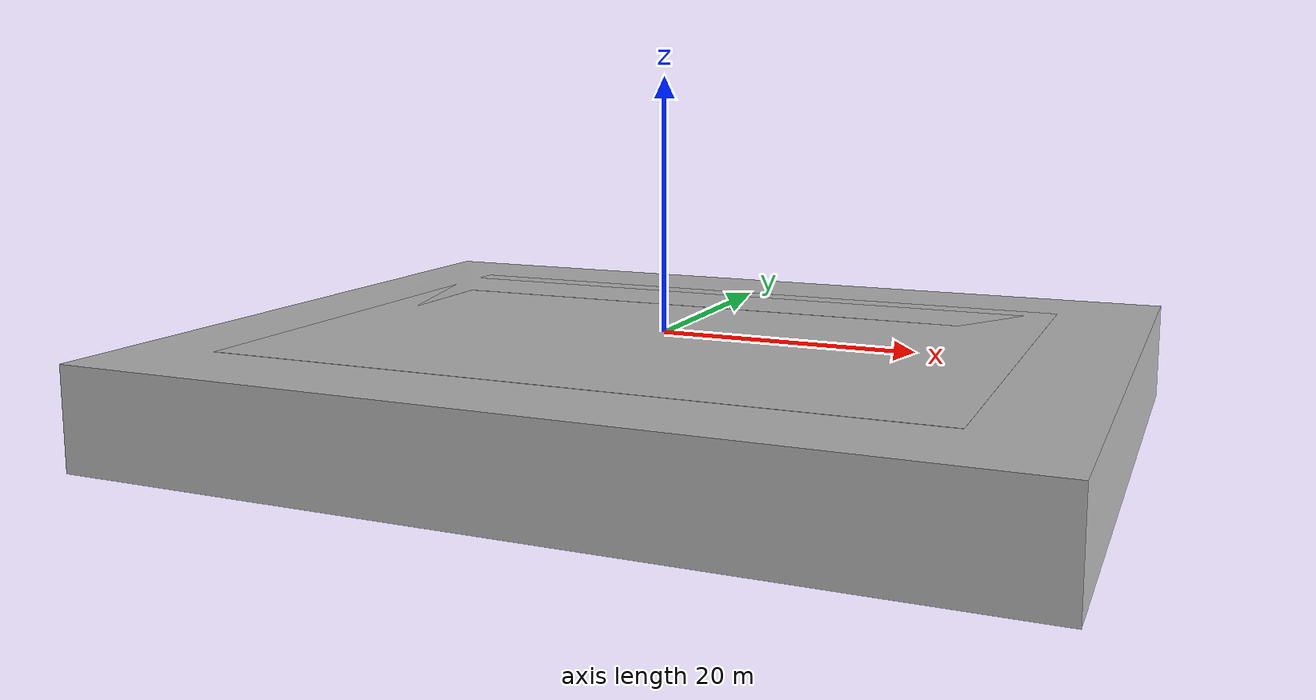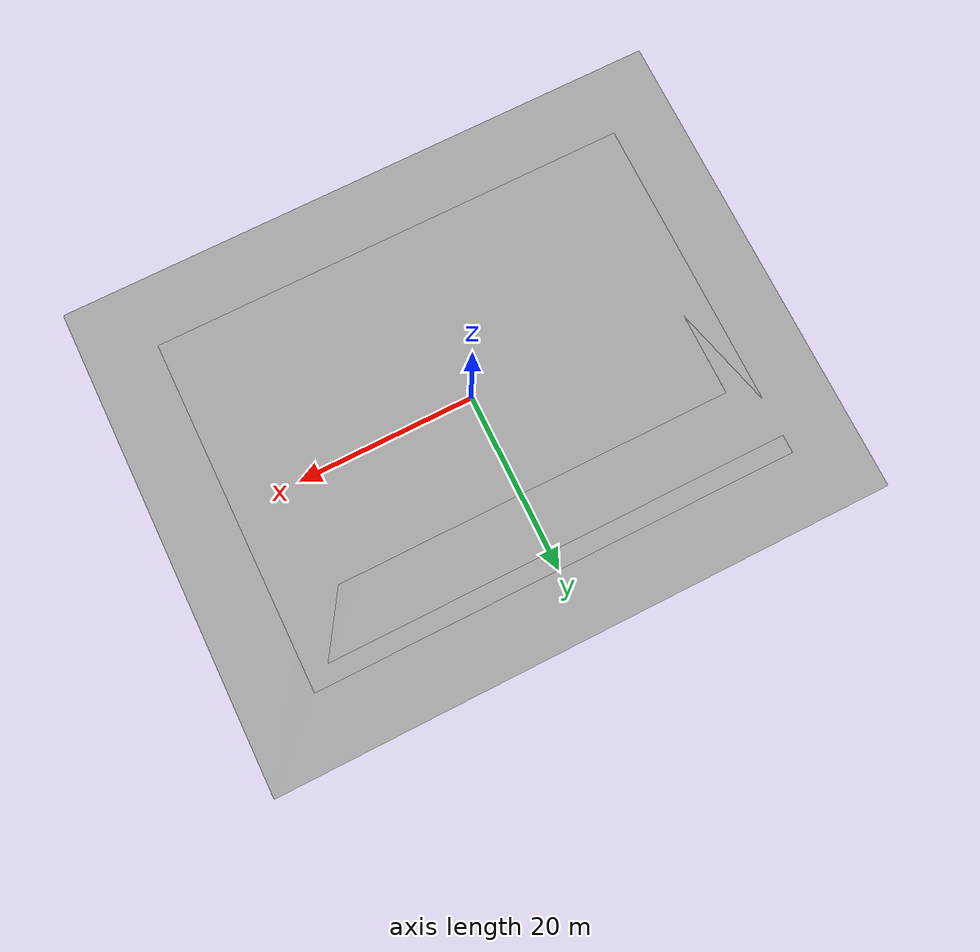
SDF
<?xml version="1.0" ?>
<sdf version="1.5">
<model name="pool_v2_flat">
  <static>true</static>
  <link name="pool_link">

  <visual name="surface">
    <cast_shadows>false</cast_shadows>
    <pose>0 0 0 0 0 0</pose>
    <geometry>
      <box>
        <size>55 40 .1</size>
      </box>
    </geometry>
    <material>
      <script>
        <uri>file://Media/materials/scripts/water.material</uri>
        <name>UUVSimulator/StaticWater</name>
      </script>
    </material>
  </visual>

  <visual name="pool_v2_flat">
    <pose>0 0 -3.9 0 0 0</pose>
    <geometry>
      <mesh><uri>model://pool_v2_flat/meshes/pool_v2_flat.dae</uri><scale>1 1 1</scale></mesh>
    </geometry>
  </visual>

  <collision name="pool_v2_flat">
    <pose>0 0 -3.9 0 0 0</pose>
    <geometry>
      <mesh><uri>model://pool_v2_flat/meshes/pool_v2_flat.stl</uri><scale>1 1 1</scale></mesh>
    </geometry>
  </collision>

  </link>
</model>
</sdf>
